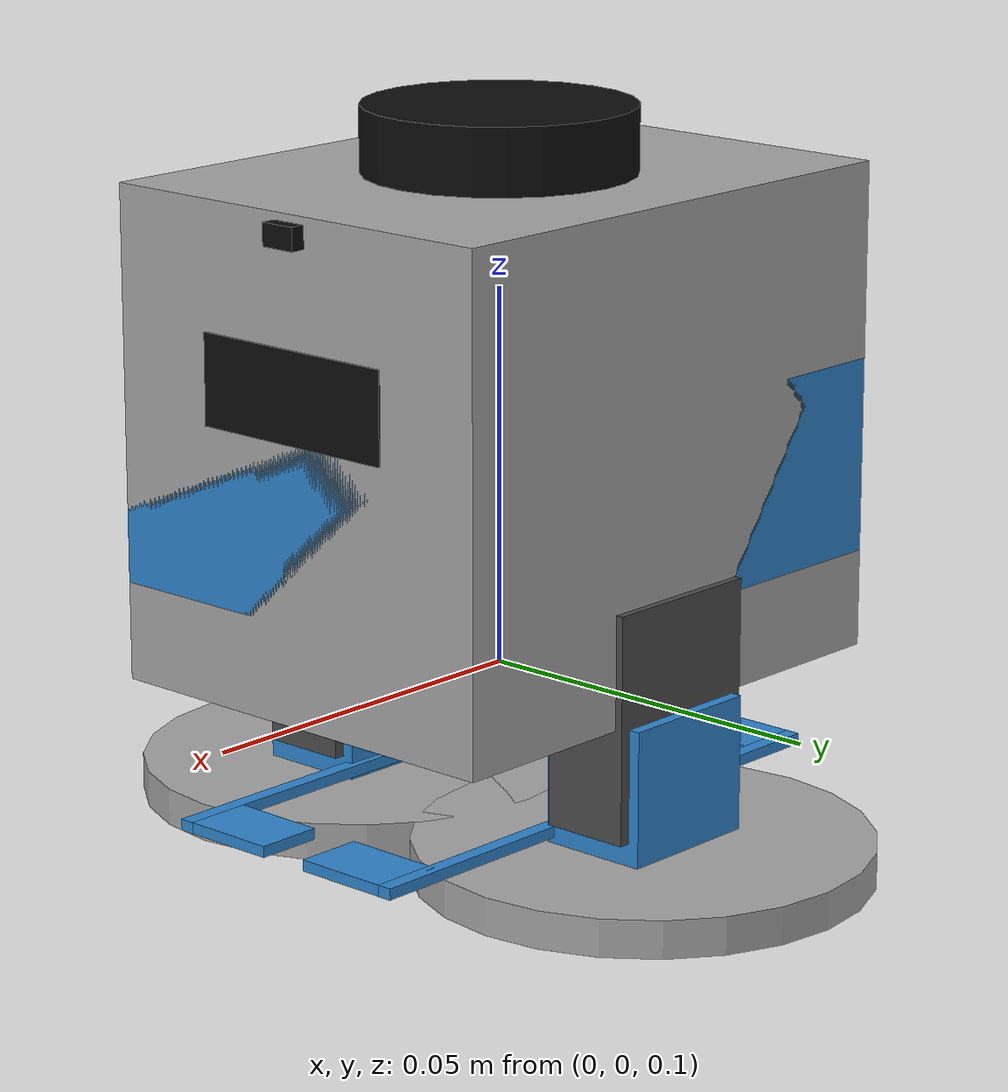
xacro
<?xml version="1.0"?>
<robot xmlns:xacro="http://www.ros.org/wiki/xacro" name="otto">

  <!-- ── Include utilities ── -->
  <xacro:include filename="otto_materials.xacro" />
  <xacro:include filename="otto_ros2_control.xacro" />
  <xacro:include filename="otto_lidar.xacro" />
  <xacro:include filename="otto_camera.xacro" />
  <xacro:include filename="otto_display.xacro" />

  <!--==== PHYSICAL PARAMETERS ====-->

  <!-- Body / head combined box -->
  <xacro:property name="body_x"    value="0.075"/>   <!-- width  -->
  <xacro:property name="body_y"    value="0.060"/>   <!-- depth  -->
  <xacro:property name="body_z"    value="0.065"/>   <!-- height -->
  <xacro:property name="body_mass" value="0.07"/>

  <!-- Leg segment -->
  <xacro:property name="leg_x"    value="0.020"/>
  <xacro:property name="leg_y"    value="0.015"/>
  <xacro:property name="leg_z"    value="0.018"/>
  <xacro:property name="leg_mass" value="0.025"/>

  <!-- Bar segment -->
  <xacro:property name="bar_x"    value="0.08"/>
  <xacro:property name="bar_y"    value="0.002"/>
  <xacro:property name="bar_z"    value="0.0015"/>
  <xacro:property name="bar_mass" value="0.005"/>

  <!-- Bar support segment -->
  <xacro:property name="support_x"    value="0.009"/>
  <xacro:property name="support_y"    value="0.014"/>
  <xacro:property name="support_z"    value="0.0015"/>
  <xacro:property name="support_mass" value="0.001"/>

  <!-- Foot (flat disc) -->
  <xacro:property name="foot_r"    value="0.030"/>
  <xacro:property name="foot_h"    value="0.005"/>
  <xacro:property name="foot_mass" value="0.020"/>

  <!-- Servo joint limits (±360° realistic for Otto walk) -->
  <xacro:property name="servo_limit" value="3.14"/>   <!-- rad, ~360° -->
  <xacro:property name="servo_vel"   value="3.14"/>     <!-- rad/s     -->
  <xacro:property name="servo_eff"   value="0.5"/>

  <!-- Lateral offset: distance from body centre to each leg -->
  <xacro:property name="leg_offset_y" value="0.025"/>

  <!-- Vertical offsets -->
  <!-- body_link origin is at the body's geometric centre -->
  <xacro:property name="body_z_from_base" value="${body_z/2.0}"/>
  <!-- hip joint is at bottom face of body, laterally offset -->
  <xacro:property name="hip_z_in_body"    value="${-body_z/2.0}"/>
  <!-- foot joint is at the bottom of the leg -->
  <xacro:property name="foot_z_in_leg"    value="${-leg_z/2.0}"/>

  <!--=== BASE LINK  (world / floor anchor, mass-less) ===-->
  <link name="base_link"/>

  <!--=== BODY / HEAD LINK ===-->

  <link name="body_link">
    <xacro:inertia_box m="${body_mass/2}" x="${body_x}" y="${body_y}" z="${-body_z/2}"/>

    <!-- Torso + head box (grey top, blue sides) — single visual block -->
    <visual>
      <origin xyz="0 0 0" rpy="0 0 0"/>
      <geometry>
        <box size="${body_x} ${body_y} ${body_z}"/>
      </geometry>
      <material name="otto_grey"/>
    </visual>

    <!-- Blue mid-band visual -->
    <visual>
      <origin xyz="0 0 ${-body_z*0.1}" rpy="0 0 0"/>
      <geometry>
        <box size="${body_x} ${body_y} ${body_z*0.40}"/>
      </geometry>
      <material name="otto_blue"/>
    </visual>

    <collision>
      <origin xyz="0 0 0" rpy="0 0 0"/>
      <geometry>
        <box size="${body_x} ${body_y} ${body_z}"/>
      </geometry>
    </collision>
  </link>

  <joint name="base_to_body" type="fixed">
    <parent link="base_link"/>
    <child  link="body_link"/>
    <origin xyz="0 0 ${body_z_from_base}" rpy="0 0 0"/>
  </joint>

  <!-- Base footprint -->
  <link name="base_footprint"/>

  <joint name="base_footprint_joint" type="fixed">
      <parent link="base_footprint"/>
      <child link="base_link"/>
      <origin xyz="0 0 0.10" rpy="0 0 0"/>
  </joint>

  <!--=== LEFT LEG ASSEMBLY ===-->

  <!-- Servo block (cosmetic, fixed to body) -->
  <xacro:servo_block
    prefix="left_hip"
    parent_link="body_link"
    xyz="0 ${leg_offset_y} ${hip_z_in_body}"
    rpy="0 0 0"/>

  <!-- Hip revolute joint — rotates about X (swing leg fore/aft) -->
  <joint name="left_hip_joint" type="revolute">
    <parent link="left_hip_servo"/>
    <child  link="left_leg_link"/>
    <origin xyz="0 0 ${-leg_z/2.0}" rpy="0 0 0"/>
    <axis   xyz="1 0 0"/>
    <limit  lower="${-servo_limit}" upper="${servo_limit}"
            effort="${servo_eff}"   velocity="${servo_vel}"/>
    <xacro:servo_dynamics/>
  </joint>

  <link name="left_leg_link">
    <xacro:inertia_box m="${leg_mass}" x="${leg_x}" y="${leg_y}" z="${leg_z}"/>
    <visual>
      <origin xyz="0 0 0" rpy="0 0 0"/>
      <geometry>
        <box size="${leg_x} ${leg_y} ${leg_z}"/>
      </geometry>
      <material name="otto_blue"/>
    </visual>
    <collision>
      <origin xyz="0 0 0" rpy="0 0 0"/>
      <geometry>
        <box size="${leg_x} ${leg_y} ${leg_z}"/>
      </geometry>
    </collision>
  </link>
  <!-- Balance bar -->
  <joint name="left_bar_joint" type="fixed">
    <origin xyz="0.0 ${-leg_y/2} ${-leg_z/2 + bar_z}" rpy="0.0 0.0 0.0"/>
    <parent link="left_leg_link"/>
    <child link="left_bar_link"/>
  </joint>

  <!-- Left front support -->
  <joint name="left_front_support_joint" type="fixed">
    <origin xyz="${bar_x/2 - support_x/2} ${-support_y/2} 0" rpy="0.0 0.0 0.0"/>
    <parent link="left_bar_link"/>
    <child link="left_front_support_link"/>
  </joint>

   <link name="left_front_support_link">
    <xacro:inertia_box m="${support_mass}" x="${support_x}" y="${support_y}" z="${support_z}"/>
    <visual>
      <origin xyz="0.0 0.0 0.0" rpy="0.0 0.0 0.0"/>
      <geometry>
        <box size="${support_x} ${support_y} ${support_z}"/>
      </geometry>
      <material name="otto_blue"/>
    </visual>
    <collision>
      <origin xyz="0.0 0.0 0.0" rpy="0.0 0.0 0.0"/>
      <geometry>
        <box size="${support_x} ${support_y} ${support_z}"/>
      </geometry>
    </collision>
  </link>

  <!--Left back support -->
  <joint name="left_back_support_joint" type="fixed">
    <origin xyz="${-bar_x/2 + support_x/2} ${-support_y/2} 0" rpy="0.0 0.0 0.0"/>
    <parent link="left_bar_link"/>
    <child link="left_back_support_link"/>
  </joint>

  <link name="left_back_support_link">
    <xacro:inertia_box m="${support_mass}" x="${support_x}" y="${support_y}" z="${support_z}"/>
    <visual>
      <origin xyz="0.0 0.0 0.0" rpy="0.0 0.0 0.0"/>
      <geometry>
        <box size="${support_x} ${support_y} ${support_z}"/>
      </geometry>
      <material name="otto_blue"/>
    </visual>
    <collision>
      <origin xyz="0.0 0.0 0.0" rpy="0.0 0.0 0.0"/>
      <geometry>
        <box size="${support_x} ${support_y} ${support_z}"/>
      </geometry>
    </collision>
  </link>

  <link name="left_bar_link">
    <xacro:inertia_box m="${bar_mass}" x="${bar_x}" y="${bar_y}" z="${bar_z}"/>
    <visual>
      <origin xyz="0.0 0.0 0.0" rpy="0.0 0.0 0.0"/>
      <geometry>
        <box size="${bar_x} ${bar_y} ${bar_z}"/>
      </geometry>
      <material name="otto_blue"/>
    </visual>
    <collision>
      <origin xyz="0.0 0.0 0.0" rpy="0.0 0.0 0.0"/>
      <geometry>
        <box size="${bar_x} ${bar_y} ${bar_z}"/>
      </geometry>
    </collision>
  </link>

  <!-- Foot revolute joint — rotates about Z (tilt foot) -->
  <joint name="left_foot_joint" type="revolute">
    <parent link="left_leg_link"/>
    <child  link="left_foot_link"/>
    <origin xyz="0 0 ${foot_z_in_leg - foot_h/2.0}" rpy="0 0 0"/>
    <axis   xyz="0 0 1"/>
    <limit  lower="${-servo_limit/2}" upper="${servo_limit/2}"
            effort="${servo_eff}"   velocity="${servo_vel}"/>
    <xacro:servo_dynamics/>
  </joint>

  <link name="left_foot_link">
    <xacro:inertia_cylinder m="${foot_mass}" r="${foot_r}" h="${foot_h}"/>
     <visual>
      <origin xyz="0 0 0" rpy="0 0 0"/>
      <geometry>
        <cylinder radius="${foot_r}" length="${foot_h}"/>
      </geometry>
      <material name="otto_grey"/>
    </visual>
    <collision>
      <origin xyz="0 0 0" rpy="0 0 0"/>
      <geometry>
        <cylinder radius="${foot_r}" length="${foot_h}"/>
      </geometry>
    </collision>
  </link>

  <joint name="left_wheel_joint" type="continuous">
    <parent link="left_foot_link"/>
    <child  link="left_wheel_link"/>
    <origin xyz="0 0 0" rpy="0 0 0"/> <axis   xyz="0 0 -1"/> </joint>

 <link name="left_wheel_link">
    <inertial>
      <mass value="0.01"/>
      <inertia ixx="0.00001" ixy="0" ixz="0" iyy="0.00001" iyz="0" izz="0.00001"/>
    </inertial>
    <collision>
      <origin xyz="0 0 0" rpy="0 0 0"/>
      <geometry>
        <cylinder radius="${foot_r}" length="${foot_h}"/>
      </geometry>
    </collision>
  </link>

  <!-- RIGHT LEG ASSEMBLY  (mirror of left) -->

  <xacro:servo_block
    prefix="right_hip"
    parent_link="body_link"
    xyz="0 ${-leg_offset_y} ${hip_z_in_body}"
    rpy="0 0 0"/>

  <joint name="right_hip_joint" type="revolute">
    <parent link="right_hip_servo"/>
    <child  link="right_leg_link"/>
    <origin xyz="0 0 ${-leg_z/2.0}" rpy="0 0 0"/>
    <axis   xyz="1 0 0"/>
    <limit  lower="${-servo_limit}" upper="${servo_limit}"
            effort="${servo_eff}"   velocity="${servo_vel}"/>
    <xacro:servo_dynamics/>
  </joint>

  <link name="right_leg_link">
    <xacro:inertia_box m="${leg_mass}" x="${leg_x}" y="${leg_y}" z="${leg_z}"/>
    <visual>
      <origin xyz="0 0 0" rpy="0 0 0"/>
      <geometry>
        <box size="${leg_x} ${leg_y} ${leg_z}"/>
      </geometry>
      <material name="otto_blue"/>
    </visual>
    <collision>
      <origin xyz="0 0 0" rpy="0 0 0"/>
      <geometry>
        <box size="${leg_x} ${leg_y} ${leg_z}"/>
      </geometry>
    </collision>
  </link>
  <joint name="right_bar_joint" type="fixed">
    <origin xyz="0.0 ${leg_y/2} ${-leg_z/2 + bar_z}" rpy="0.0 0.0 0.0"/>
    <parent link="right_leg_link"/>
    <child link="right_bar_link"/>
  </joint>

  <link name="right_bar_link">
    <xacro:inertia_box m="${bar_mass}" x="${bar_x}" y="${bar_y}" z="${bar_z}"/>
    <visual>
      <origin xyz="0.0 0.0 0.0" rpy="0.0 0.0 0.0"/>
      <geometry>
        <box size="${bar_x} ${bar_y} ${bar_z}"/>
      </geometry>
      <material name="otto_blue"/>
    </visual>
    <collision>
      <origin xyz="0.0 0.0 0.0" rpy="0.0 0.0 0.0"/>
      <geometry>
        <box size="${bar_x} ${bar_y} ${bar_z}"/>
      </geometry>
    </collision>
  </link>

  <!-- Right front support -->
  <joint name="right_front_support_joint" type="fixed">
    <origin xyz="${bar_x/2 - support_x/2} ${support_y/2} 0" rpy="0.0 0.0 0.0"/>
    <parent link="right_bar_link"/>
    <child link="right_front_support_link"/>
  </joint>

   <link name="right_front_support_link">
    <xacro:inertia_box m="${support_mass}" x="${support_x}" y="${support_y}" z="${support_z}"/>
    <visual>
      <origin xyz="0.0 0.0 0.0" rpy="0.0 0.0 0.0"/>
      <geometry>
        <box size="${support_x} ${support_y} ${support_z}"/>
      </geometry>
      <material name="otto_blue"/>
    </visual>
    <collision>
      <origin xyz="0.0 0.0 0.0" rpy="0.0 0.0 0.0"/>
      <geometry>
        <box size="${support_x} ${support_y} ${support_z}"/>
      </geometry>
    </collision>
  </link>

  <!-- Right back support -->
  <joint name="right_back_support_joint" type="fixed">
    <origin xyz="${-bar_x/2 + support_x/2} ${support_y/2} 0" rpy="0.0 0.0 0.0"/>
    <parent link="right_bar_link"/>
    <child link="right_back_support_link"/>
  </joint>

  <link name="right_back_support_link">
    <xacro:inertia_box m="${support_mass}" x="${support_x}" y="${support_y}" z="${support_z}"/>
    <visual>
      <origin xyz="0.0 0.0 0.0" rpy="0.0 0.0 0.0"/>
      <geometry>
        <box size="${support_x} ${support_y} ${support_z}"/>
      </geometry>
      <material name="otto_blue"/>
    </visual>
    <collision>
      <origin xyz="0.0 0.0 0.0" rpy="0.0 0.0 0.0"/>
      <geometry>
        <box size="${support_x} ${support_y} ${support_z}"/>
      </geometry>
    </collision>
  </link>

  <joint name="right_foot_joint" type="revolute">
    <parent link="right_leg_link"/>
    <child  link="right_foot_link"/>
    <origin xyz="0 0 ${foot_z_in_leg - foot_h/2.0}" rpy="0 0 0"/>
    <axis   xyz="0 0 1"/>
    <limit  lower="${-servo_limit/2}" upper="${servo_limit/2}"
            effort="${servo_eff}"   velocity="${servo_vel}"/>
    <xacro:servo_dynamics/>
  </joint>

  <link name="right_foot_link">
    <xacro:inertia_cylinder m="${foot_mass}" r="${foot_r}" h="${foot_h}"/>
    <visual>
      <origin xyz="0 0 0" rpy="0 0 0"/>
      <geometry>
        <cylinder radius="${foot_r}" length="${foot_h}"/>
      </geometry>
      <material name="otto_grey"/>
    </visual>
    <collision>
      <origin xyz="0 0 0" rpy="0 0 0"/>
      <geometry>
        <cylinder radius="${foot_r}" length="${foot_h}"/>
      </geometry>
    </collision>
  </link>

   <joint name="right_wheel_joint" type="continuous">
    <parent link="right_foot_link"/>
    <child  link="right_wheel_link"/>
    <origin xyz="0 0 0" rpy="0 0 0"/> <axis   xyz="0 0 1"/> </joint>

  <link name="right_wheel_link">
    <inertial>
      <mass value="0.01"/>
      <inertia ixx="0.00001" ixy="0" ixz="0" iyy="0.00001" iyz="0" izz="0.00001"/>
    </inertial>
    <collision>
      <origin xyz="0 0 0" rpy="0 0 0"/>
      <geometry>
        <cylinder radius="${foot_r}" length="${foot_h}"/>
      </geometry>
    </collision>
  </link>
</robot>

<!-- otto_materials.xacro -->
<robot xmlns:xacro="http://www.ros.org/wiki/xacro" name="otto_materials">

  <!-- ============================================================
       OTTO ROBOT — Materials & Utility Components
       ============================================================ -->

  <!--==== COLORS / MATERIALS ====-->

  <material name="otto_blue">
    <color rgba="0.18 0.52 0.80 1.0"/>
  </material>

  <material name="otto_grey">
    <color rgba="0.65 0.65 0.65 1.0"/>
  </material>

  <material name="otto_dark_grey">
    <color rgba="0.30 0.30 0.30 1.0"/>
  </material>

  <material name="otto_white">
    <color rgba="0.95 0.95 0.95 1.0"/>
  </material>

  <material name="otto_black">
    <color rgba="0.05 0.05 0.05 1.0"/>
  </material>

  <!--==== INERTIA MACROS  (solid primitives) ====-->

  <!-- Solid box  m [kg], x/y/z [m] (Dimension) -->
  <xacro:macro name="inertia_box" params="m x y z">
    <inertial>
      <mass value="${m}"/>
      <inertia
        ixx="${m*(y*y + z*z)/12.0}"
        ixy="0" ixz="0"
        iyy="${m*(x*x + z*z)/12.0}"
        iyz="0"
        izz="${m*(x*x + y*y)/12.0}"/>
    </inertial>
  </xacro:macro>

  <!-- Solid cylinder  m [kg], r [m], h [m] -->
  <xacro:macro name="inertia_cylinder" params="m r h">
    <inertial>
      <mass value="${m}"/>
      <inertia
        ixx="${m*(3*r*r + h*h)/12.0}"
        ixy="0" ixz="0"
        iyy="${m*(3*r*r + h*h)/12.0}"
        iyz="0"
        izz="${m*r*r/2.0}"/>
    </inertial>
  </xacro:macro>

  <!-- Solid sphere  m [kg], r [m] -->
  <xacro:macro name="inertia_sphere" params="m r">
    <inertial>
      <mass value="${m}"/>
      <inertia
        ixx="${2.0*m*r*r/5.0}"
        ixy="0" ixz="0"
        iyy="${2.0*m*r*r/5.0}"
        iyz="0"
        izz="${2.0*m*r*r/5.0}"/>
    </inertial>
  </xacro:macro>

  <!-- DEFAULT DYNAMICS MACRO: Apply to every revolute joint that drives a servo -->

  <xacro:macro name="servo_dynamics">
    <dynamics damping="0.01" friction="0.001"/>
  </xacro:macro>

  <xacro:macro name="servo_block" params="prefix parent_link xyz rpy">

    <!-- Servo body -->
    <link name="${prefix}_servo">
      <xacro:inertia_box m="0.009" x="0.023" y="0.012" z="0.03"/>
      <visual>
        <origin xyz="0 0 0" rpy="0 0 0"/>
        <geometry>
          <box size="0.023 0.012 0.03"/>
        </geometry>
        <material name="otto_dark_grey"/>
      </visual>
      <collision>
        <origin xyz="0 0 0" rpy="0 0 0"/>
        <geometry>
          <box size="0.023 0.012 0.03"/>
        </geometry>
      </collision>
    </link>

    <joint name="${prefix}_servo_fixed" type="fixed">
      <parent link="${parent_link}"/>
      <child  link="${prefix}_servo"/>
      <origin xyz="${xyz}" rpy="${rpy}"/>
    </joint>

  </xacro:macro>

   <!--=========== GAZEBO: Color setting ===========-->
    <gazebo reference="body_link">
      <visual>
        <material>
          <ambient>0.18 0.52 0.80 1.0</ambient>       <!-- Lighting: dictates what the object looks like when it is in the shadows -->
          <diffuse>0.18 0.52 0.80 1.0</diffuse>       <!-- Color : object reflects when a direct light source (like the sun or a spotlight) hits it.-->
        </material>
      </visual>
    </gazebo>

    <gazebo reference="left_leg_link">
      <visual>
        <material>
          <ambient>0.18 0.52 0.80 1.0</ambient>
          <diffuse>0.18 0.52 0.80 1.0</diffuse>
        </material>
      </visual>
    </gazebo>

    <gazebo reference="right_leg_link">
      <visual>
        <material>
          <ambient>0.18 0.52 0.80 1.0</ambient>
          <diffuse>0.18 0.52 0.80 1.0</diffuse>
        </material>
      </visual>
    </gazebo>

    <gazebo reference="left_foot_link">
      <mu1>0.0</mu1>  <!-- forward friction -->
      <mu2>0.9</mu2>   <!-- lateral friction:  -->
      <visual>
        <material>
          <ambient>0.65 0.65 0.65 1.0</ambient>
          <diffuse>0.65 0.65 0.65 1.0</diffuse>
        </material>
      </visual>
    </gazebo>

    <gazebo reference="right_foot_link">
      <mu1>0.0</mu1>                               <!--Friction/gripping on the floor.-->
      <mu2>0.9</mu2>
      <visual>
        <material>
          <ambient>0.65 0.65 0.65 1.0</ambient>
          <diffuse>0.65 0.65 0.65 1.0</diffuse>
        </material>
      </visual>
    </gazebo>

    <gazebo reference="right_back_support_link">
        <mu1>0</mu1>
        <mu2>0</mu2>
    </gazebo>
     <gazebo reference="right_front_support_link">
        <mu1>0</mu1>
        <mu2>0</mu2>
    </gazebo>
     <gazebo reference="left_back_support_link">
        <mu1>0</mu1>
        <mu2>0</mu2>
    </gazebo>
     <gazebo reference="left_front_support_link">
        <mu1>0</mu1>
        <mu2>0</mu2>
    </gazebo>
</robot>

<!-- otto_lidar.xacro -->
<robot xmlns:xacro="http://www.ros.org/wiki/xacro">

    <joint name="lidar_joint" type="fixed">
        <parent link="body_link"/>
        <child link="lidar_link"/>
        <origin xyz="0.0 0.0 0.035" rpy="0.0 0.0 0.0"/>
    </joint>

    <link name="lidar_link">
        <xacro:inertia_cylinder m="0.01" r="0.017795" h="0.0125"/>
        <visual>
            <origin xyz="0 0 0" rpy="0 0 0"/>
            <geometry>
                <cylinder radius="0.017795" length="0.0125"/>
            </geometry>
            <material name="otto_black"/>
        </visual>
        <collision>
            <origin xyz="0 0 0" rpy="0 0 0"/>
            <geometry>
                <cylinder radius="0.017795" length="0.0125"/>
            </geometry>
        </collision>
    </link>

    <!-- =========== Gazebo tag ========== -->
    <gazebo reference="lidar_link">
        <sensor name="lidar_sensor" type="gpu_lidar">   <!-- Ray: scanning sensor (lidar)-->
            <always_on>true</always_on>
            <update_rate>10</update_rate>
            <topic>/scan</topic>
            <gz_frame_id>lidar_link</gz_frame_id>

            <ray>
                <scan>
                    <horizontal>
                        <samples>360</samples>
                        <resolution>1.0</resolution>
                        <min_angle>-3.14159</min_angle>
                        <max_angle>3.14159</max_angle>
                    </horizontal>
                </scan>
                <range>
                    <min>0.12</min>
                    <max>8.0</max>
                    <resolution>0.01</resolution>
                </range>
                <noise>
                    <type>gaussian</type>
                    <mean>0.0</mean>
                    <stddev>0.01</stddev>
                </noise>
            </ray>

            <plugin filename="gz-sim-sensors-system" name="gz::sim::systems::Sensors">
                <render_engine>ogre2</render_engine>
            </plugin>
        </sensor>
    </gazebo>

</robot>

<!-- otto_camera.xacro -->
<robot xmlns:xacro="http://www.ros.org/wiki/xacro">

    <joint name="camera_joint" type="fixed">
        <parent link="body_link"/>
        <child link="camera_link"/>
        <origin xyz="0.037 0.0 0.03" rpy="0.0 0.0 0.0"/>
    </joint>

    <link name="camera_link">
        <visual>
            <origin xyz="0 0 0" rpy="0 0 0"/>
            <geometry>
                <box size="0.005 0.005 0.003"/>
            </geometry>
            <material name="otto_black"/>
        </visual>
    </link>

     <!-- Invisible Joint -->
    <joint name="camera_optical_joint" type="fixed">
        <parent link="camera_link"/>
        <child link="camera_optical_link"/>
        <origin xyz="0 0 0" rpy="-1.5708 0 -1.5708"/>
    </joint>

    <link name="camera_optical_link"></link>

    <!-- =========== Gazebo tag ========== -->
    <gazebo reference="camera_link">
        <sensor name="camera_sensor" type="camera">
            <always_on>true</always_on>
            <update_rate>30.0</update_rate>
            <topic>/camera/image_raw</topic>

            <gz_frame_id>camera_optical_link</gz_frame_id>

            <camera>
                <horizontal_fov>1.39626</horizontal_fov>
                <image>
                    <width>640</width>
                    <height>480</height>
                    <format>R8G8B8</format>
                </image>
                <clip>
                    <near>0.02</near>
                    <far>300</far>
                </clip>
                <noise>
                    <type>gaussian</type>
                    <mean>0.0</mean>
                    <stddev>0.007</stddev>
                </noise>
            </camera>
        </sensor>
    </gazebo>

</robot>

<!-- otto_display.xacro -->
<robot xmlns:xacro="http://www.ros.org/wiki/xacro">

    <joint name="display_joint" type="fixed">
        <parent link="body_link"/>
        <child link="display_link"/>
        <origin xyz="0.037 0 0.00975" rpy="0.0 0.0 0.0"/>
    </joint>

    <link name="display_link">
        <xacro:inertia_box m="0.008" x="0.00145" y="0.03" z="0.012"/>
        <visual>
            <origin xyz="0 0 0" rpy="0 0 0"/>
            <geometry>
                <box size="0.00145 0.03 0.012"/>
            </geometry>
            <material name="otto_black"/>
        </visual>
        <collision>
            <origin xyz="0 0 0" rpy="0 0 0"/>
            <geometry>
                <box size="0.00145 0.03 0.012"/>
            </geometry>
        </collision>
    </link>
</robot>
